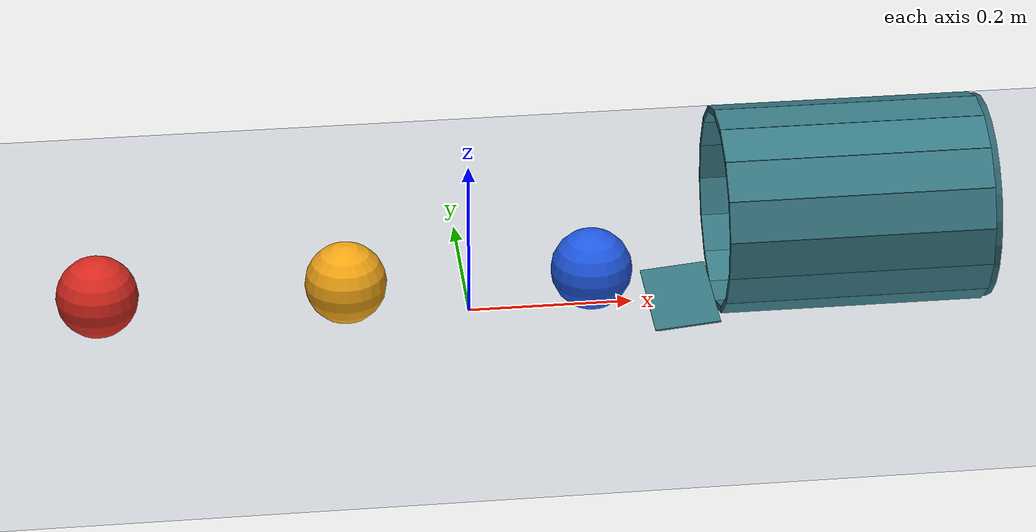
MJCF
<mujoco model="three_balls_into_a_cup">
  <compiler angle="degree" inertiafromgeom="true"/>
  <option timestep="0.002" gravity="0 0 -9.81" integrator="implicitfast" solver="Newton" iterations="100" cone="elliptic"/>
  <size njmax="1000" nconmax="200"/>

  <visual>
    <global offwidth="1280" offheight="720"/>
    <headlight ambient="0.3 0.3 0.3" diffuse="0.6 0.6 0.6" specular="0.2 0.2 0.2"/>
  </visual>

  <worldbody>
    <light name="key_light" pos="-1 -2 3" dir="0.3 0.4 -1" diffuse="0.8 0.8 0.8"/>
    <light name="fill_light" pos="1 1 2" dir="-0.3 -0.3 -1" diffuse="0.4 0.4 0.4"/>
    <camera name="overview" pos="0 -2 1.4" xyaxes="1 0 0 0 0.57 0.82" fovy="42"/>

    <geom name="floor" type="plane" pos="0 0 0" size="3 2 0.1" rgba="0.82 0.84 0.86 1" condim="6" friction="0.6 0.003 0.001" solref="0.02 1" solimp="0.95 0.99 0.001" priority="1"/>

    <body name="ball1" pos="-0.45 0 0.05">
      <freejoint name="ball1_free"/>
      <geom name="ball1_sphere" type="sphere" size="0.05" mass="0.1" rgba="0.85 0.16 0.12 1" condim="6" friction="0.6 0.003 0.001" solref="0.03 0.3" solimp="0.95 0.99 0.001"/>
    </body>

    <body name="ball2" pos="-0.15 0 0.05">
      <freejoint name="ball2_free"/>
      <geom name="ball2_sphere" type="sphere" size="0.05" mass="0.1" rgba="0.95 0.65 0.08 1" condim="6" friction="0.6 0.003 0.001" solref="0.03 0.3" solimp="0.95 0.99 0.001"/>
    </body>

    <body name="ball3" pos="0.15 0 0.05">
      <freejoint name="ball3_free"/>
      <geom name="ball3_sphere" type="sphere" size="0.05" mass="0.1" rgba="0.12 0.35 0.9 1" condim="6" friction="0.6 0.003 0.001" solref="0.03 0.3" solimp="0.95 0.99 0.001"/>
    </body>

    <!-- Fixed horizontal cup: open toward -x, closed at +x.
         The entrance ramp rises from the floor to the 8 mm interior bottom. -->
    <body name="cup" pos="0.46 0 0.124">
      <geom name="cup_entry_ramp" type="box" pos="-0.20 0 -0.121" euler="0 -5.710593 0" size="0.0401995 0.07 0.001" rgba="0.22 0.48 0.52 1" condim="6" friction="0.6 0.003 0.001" solref="0.02 1" priority="1"/>
      <geom name="cup_wall_00" type="box" pos="0 0 0.12" euler="0 0 0" size="0.16 0.0243 0.004" rgba="0.22 0.48 0.52 1" condim="6" friction="0.6 0.003 0.001" solref="0.02 1" priority="1"/>
      <geom name="cup_wall_01" type="box" pos="0 -0.045922 0.110866" euler="22.5 0 0" size="0.16 0.0243 0.004" rgba="0.22 0.48 0.52 1" condim="6" friction="0.6 0.003 0.001" solref="0.02 1" priority="1"/>
      <geom name="cup_wall_02" type="box" pos="0 -0.084853 0.084853" euler="45 0 0" size="0.16 0.0243 0.004" rgba="0.22 0.48 0.52 1" condim="6" friction="0.6 0.003 0.001" solref="0.02 1" priority="1"/>
      <geom name="cup_wall_03" type="box" pos="0 -0.110866 0.045922" euler="67.5 0 0" size="0.16 0.0243 0.004" rgba="0.22 0.48 0.52 1" condim="6" friction="0.6 0.003 0.001" solref="0.02 1" priority="1"/>
      <geom name="cup_wall_04" type="box" pos="0 -0.12 0" euler="90 0 0" size="0.16 0.0243 0.004" rgba="0.22 0.48 0.52 1" condim="6" friction="0.6 0.003 0.001" solref="0.02 1" priority="1"/>
      <geom name="cup_wall_05" type="box" pos="0 -0.110866 -0.045922" euler="112.5 0 0" size="0.16 0.0243 0.004" rgba="0.22 0.48 0.52 1" condim="6" friction="0.6 0.003 0.001" solref="0.02 1" priority="1"/>
      <geom name="cup_wall_06" type="box" pos="0 -0.084853 -0.084853" euler="135 0 0" size="0.16 0.0243 0.004" rgba="0.22 0.48 0.52 1" condim="6" friction="0.6 0.003 0.001" solref="0.02 1" priority="1"/>
      <geom name="cup_wall_07" type="box" pos="0 -0.045922 -0.110866" euler="157.5 0 0" size="0.16 0.0243 0.004" rgba="0.22 0.48 0.52 1" condim="6" friction="0.6 0.003 0.001" solref="0.02 1" priority="1"/>
      <geom name="cup_wall_08" type="box" pos="0 0 -0.12" euler="180 0 0" size="0.16 0.0243 0.004" rgba="0.22 0.48 0.52 1" condim="6" friction="0.6 0.003 0.001" solref="0.02 1" priority="1"/>
      <geom name="cup_wall_09" type="box" pos="0 0.045922 -0.110866" euler="202.5 0 0" size="0.16 0.0243 0.004" rgba="0.22 0.48 0.52 1" condim="6" friction="0.6 0.003 0.001" solref="0.02 1" priority="1"/>
      <geom name="cup_wall_10" type="box" pos="0 0.084853 -0.084853" euler="225 0 0" size="0.16 0.0243 0.004" rgba="0.22 0.48 0.52 1" condim="6" friction="0.6 0.003 0.001" solref="0.02 1" priority="1"/>
      <geom name="cup_wall_11" type="box" pos="0 0.110866 -0.045922" euler="247.5 0 0" size="0.16 0.0243 0.004" rgba="0.22 0.48 0.52 1" condim="6" friction="0.6 0.003 0.001" solref="0.02 1" priority="1"/>
      <geom name="cup_wall_12" type="box" pos="0 0.12 0" euler="270 0 0" size="0.16 0.0243 0.004" rgba="0.22 0.48 0.52 1" condim="6" friction="0.6 0.003 0.001" solref="0.02 1" priority="1"/>
      <geom name="cup_wall_13" type="box" pos="0 0.110866 0.045922" euler="292.5 0 0" size="0.16 0.0243 0.004" rgba="0.22 0.48 0.52 1" condim="6" friction="0.6 0.003 0.001" solref="0.02 1" priority="1"/>
      <geom name="cup_wall_14" type="box" pos="0 0.084853 0.084853" euler="315 0 0" size="0.16 0.0243 0.004" rgba="0.22 0.48 0.52 1" condim="6" friction="0.6 0.003 0.001" solref="0.02 1" priority="1"/>
      <geom name="cup_wall_15" type="box" pos="0 0.045922 0.110866" euler="337.5 0 0" size="0.16 0.0243 0.004" rgba="0.22 0.48 0.52 1" condim="6" friction="0.6 0.003 0.001" solref="0.02 1" priority="1"/>
      <geom name="cup_base" type="cylinder" pos="0.164 0 0" euler="0 90 0" size="0.124 0.004" rgba="0.18 0.39 0.43 1" condim="6" friction="0.6 0.003 0.001" solref="0.02 1" priority="1"/>
    </body>
  </worldbody>

  <keyframe>
    <!-- Only ball1 is initially moving; vx = radius * omega_y. -->
    <key name="start" time="0" qpos="-0.45 0 0.05 1 0 0 0 -0.15 0 0.05 1 0 0 0 0.15 0 0.05 1 0 0 0" qvel="2.1 0 0 0 42 0 0 0 0 0 0 0 0 0 0 0 0 0"/>
  </keyframe>
</mujoco>
